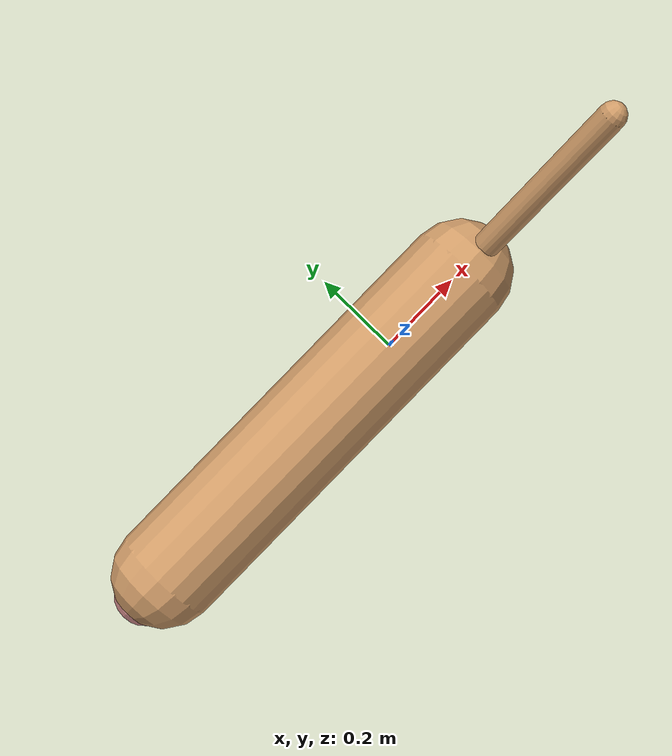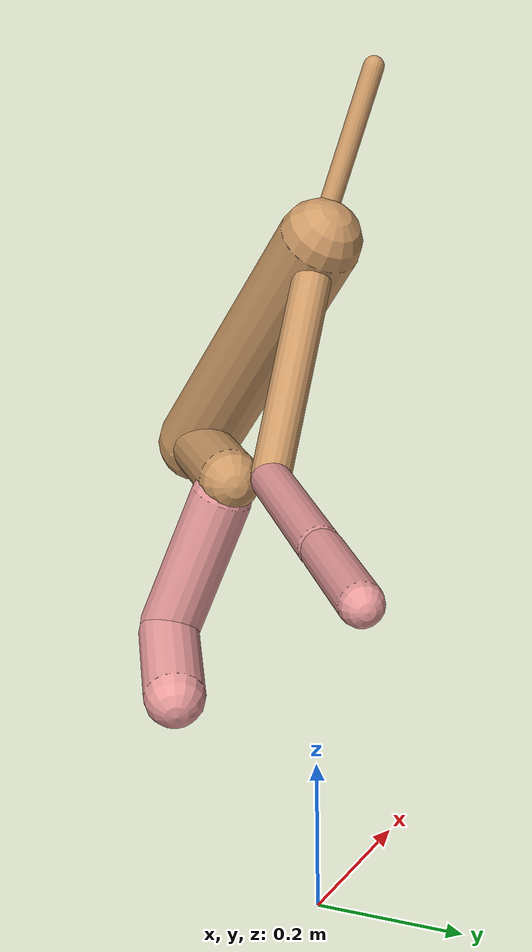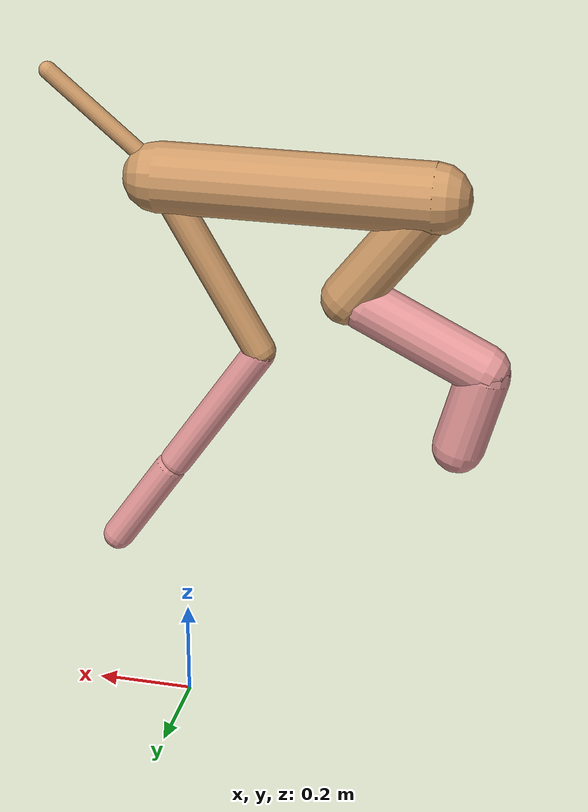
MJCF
<mujoco model="cheetah">
  <compiler angle="radian" coordinate="local" inertiafromgeom="true" settotalmass="14" />
  <default>
    <joint armature=".1" damping=".01" limited="true" solimplimit="0 .8 .03" solreflimit=".02 1" stiffness="8" />
    <geom conaffinity="0" condim="3" contype="1" friction="0.8 .1 .1" rgba="0.8 0.6 .4 1" solimp="0.0 0.8 0.01" solref="0.02 1" />
    <motor ctrllimited="true" ctrlrange="-1 1" />
  </default>
  <size nstack="300000" nuser_geom="1" />
  <option gravity="0 0 -9.81" timestep="0.01" />
  <worldbody>
    <body name="torso" pos="0.0 0.0 1.1530149491441084">
      <joint armature="0" axis="1 0 0" damping="0" limited="false" name="ignorex" pos="0 0 0" stiffness="0" type="slide" />
      <joint armature="0" axis="0 0 1" damping="0" limited="false" name="ignorez" pos="0 0 0" stiffness="0" type="slide" />
      <joint armature="0" axis="0 1 0" damping="0" limited="false" name="ignorey" pos="0 0 0" stiffness="0" type="hinge" />
      <geom fromto="-0.5 0.0 0.0 0.0403013000060472 0.0 0.0" name="torso" size="0.06955718603036382" type="capsule" />
      <geom axisangle="0 1 0 .87" name="head" pos="0.14030130000604724 0.0 0.1" size="0.01727505241550674 0.15" type="capsule" />

      <body name="bthigh" pos="-.5 0 0">
        <joint axis="0 1 0" damping="6" name="bthigh" pos="0 0 0" range="-.52 1.05" stiffness="240" type="hinge" />
        <geom axisangle="0 1 0 -3.8" name="bthigh" pos="0.08908092514845986 0.0 -0.11580520269299782" size="0.05260713121024396 0.1270913856984854" type="capsule" />
        <body name="bshin" pos="0.1381618502969197 0.0 -0.22161040538599563">
          <joint axis="0 1 0" damping="4.5" name="bshin" pos="0 0 0" range="-.785 .785" stiffness="180" type="hinge" />
          <geom axisangle="0 1 0 -2.03" name="bshin" pos="-0.12342970525751248 0.0 -0.06171485262875624" rgba="0.9 0.6 0.6 1" size="0.05260713121024396 0.13147384727429526" type="capsule" />
          <body name="bfoot" pos="-0.24685941051502497 0.0 -0.12342970525751248">
            <joint axis="0 1 0" damping="3" name="bfoot" pos="0 0 0" range="-.4 .785" stiffness="120" type="hinge" />
            <geom axisangle="0 1 0 -.27" name="bfoot" pos="0.026569678546723107 0.0 -0.08590862730107139" rgba="0.9 0.6 0.6 1" size="0.05260713121024396 0.08239027762522502" type="capsule" />
            <inertial mass="10" />
          </body>
        </body>
      </body>
      <body name="fthigh" pos="0.04030130000604726 0.0 0.0">
        <joint axis="0 1 0" damping="4.5" name="fthigh" pos="0 0 0" range="-1.5 0.8" stiffness="180" type="hinge" />
        <geom axisangle="0 1 0 .52" name="fthigh" pos="-0.10175599082782096 0.0 -0.1744388414191216" size="0.0322 0.19602404627214062" type="capsule" />
        <body name="fshin" pos="-0.2035119816556419 0.0 -0.3488776828382432">
          <joint axis="0 1 0" damping="3" name="fshin" pos="0 0 0" range="-1.2 1.1" stiffness="120" type="hinge" />
          <geom axisangle="0 1 0 -.6" name="fshin" pos="0.0944090096111514 0.0 -0.13072016715390194" rgba="0.9 0.6 0.6 1" size="0.0322 0.1562296910138865" type="capsule" />
          <body name="ffoot" pos="0.1888180192223028 0.0 -0.2614403343078039">
            <joint axis="0 1 0" damping="1.5" name="ffoot" pos="0 0 0" range="-3.1 -0.3" stiffness="60" type="hinge" />
            <geom axisangle="0 1 0 -.6" name="ffoot" pos="0.06293722708260696 0.0 -0.09790235323961086" rgba="0.9 0.6 0.6 1" size="0.0322 0.1031705506695477" type="capsule" />
            <inertial mass="10" />
          </body>
        </body>
      </body>
    </body>
  </worldbody>
  <actuator>
    <motor gear="120" joint="bthigh" name="bthigh" />
    <motor gear="90" joint="bshin" name="bshin" />
    <motor gear="60" joint="bfoot" name="bfoot" />
    <motor gear="120" joint="fthigh" name="fthigh" />
    <motor gear="60" joint="fshin" name="fshin" />
    <motor gear="30" joint="ffoot" name="ffoot" />
  </actuator>
</mujoco>
